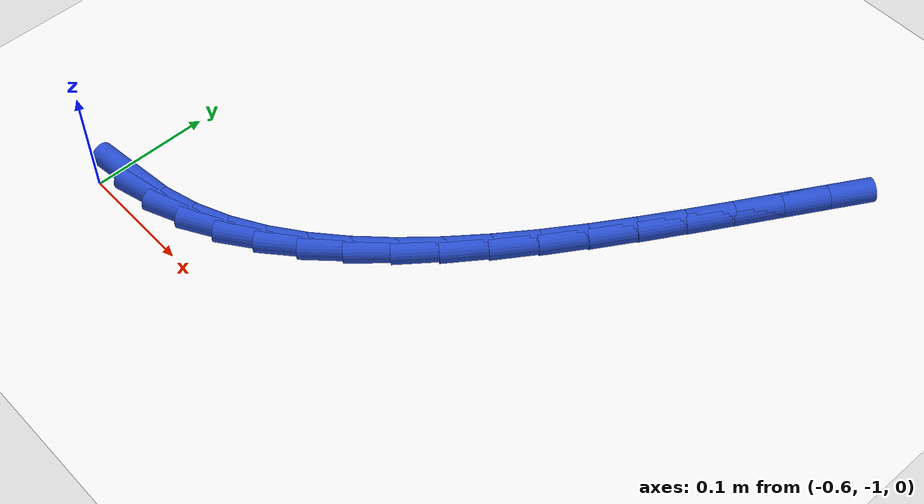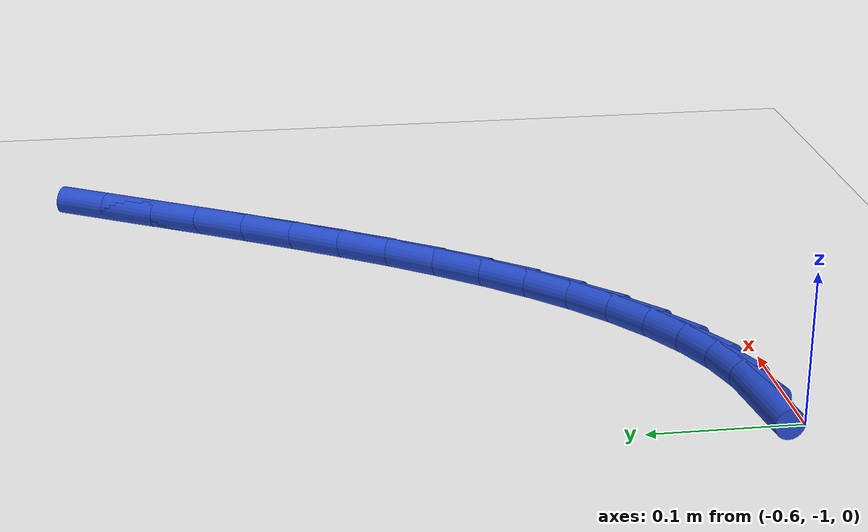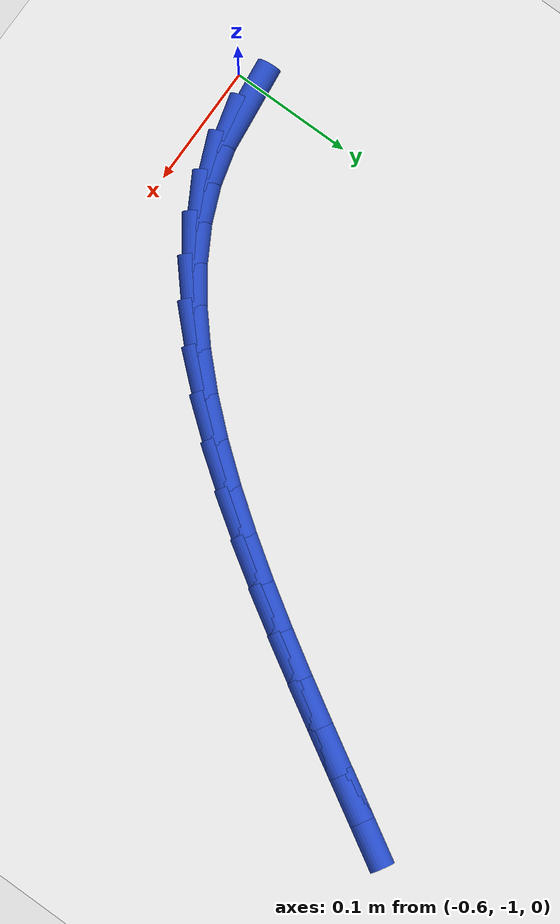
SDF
<sdf version="1.6">
 <world name="default">
  <model name="ground_plane">
   <static>1</static>
   <link name="link">
    <collision name="collision">
     <geometry><plane><normal>0 0 1</normal><size>100 100</size></plane></geometry>
     <surface><friction><ode><mu>100</mu><mu2>50</mu2></ode></friction></surface>
    </collision>
    <visual name="visual">
     <cast_shadows>0</cast_shadows>
     <geometry><plane><normal>0 0 1</normal><size>100 100</size></plane></geometry>
     <material>
      <script><uri>file://media/materials/scripts/gazebo.material</uri><name>Gazebo/WhiteGlow</name></script>
     </material>
    </visual>
   </link>
  </model>
  <model name="line">
   <link name="link_166">
    <pose>-0.5781190349333428 -0.9795975874080077 0.01 0 1.57 0.1142099212478827</pose>
    <collision name="collision">
     <geometry><cylinder><radius>0.01</radius><length>0.08</length></cylinder></geometry>
    </collision>
    <visual name="visual">
     <material>
      <script><name>Gazebo/Blue</name><uri>file://media/materials/scripts/gazebo.material</uri></script>
     </material>
     <geometry><cylinder><radius>0.01</radius><length>0.08</length></cylinder></geometry>
    </visual>
   </link>
   <link name="link_167">
    <pose>-0.5465801723861787 -0.9759797926460713 0.01 0 1.57 0.2614396355879216</pose>
    <collision name="collision">
     <geometry><cylinder><radius>0.01</radius><length>0.08</length></cylinder></geometry>
    </collision>
    <visual name="visual">
     <material>
      <script><name>Gazebo/Blue</name><uri>file://media/materials/scripts/gazebo.material</uri></script>
     </material>
     <geometry><cylinder><radius>0.01</radius><length>0.08</length></cylinder></geometry>
    </visual>
   </link>
   <link name="link_168">
    <pose>-0.5162876436751659 -0.9678746131472767 0.01 0 1.57 0.3979120259220147</pose>
    <collision name="collision">
     <geometry><cylinder><radius>0.01</radius><length>0.08</length></cylinder></geometry>
    </collision>
    <visual name="visual">
     <material>
      <script><name>Gazebo/Blue</name><uri>file://media/materials/scripts/gazebo.material</uri></script>
     </material>
     <geometry><cylinder><radius>0.01</radius><length>0.08</length></cylinder></geometry>
    </visual>
   </link>
   <link name="link_169">
    <pose>-0.48718321905902034 -0.9556410287517573 0.01 0 1.57 0.5194823866372035</pose>
    <collision name="collision">
     <geometry><cylinder><radius>0.01</radius><length>0.08</length></cylinder></geometry>
    </collision>
    <visual name="visual">
     <material>
      <script><name>Gazebo/Blue</name><uri>file://media/materials/scripts/gazebo.material</uri></script>
     </material>
     <geometry><cylinder><radius>0.01</radius><length>0.08</length></cylinder></geometry>
    </visual>
   </link>
   <link name="link_170">
    <pose>-0.4592080897747576 -0.939642759167327 0.01 0 1.57 0.6247054821061292</pose>
    <collision name="collision">
     <geometry><cylinder><radius>0.01</radius><length>0.08</length></cylinder></geometry>
    </collision>
    <visual name="visual">
     <material>
      <script><name>Gazebo/Blue</name><uri>file://media/materials/scripts/gazebo.material</uri></script>
     </material>
     <geometry><cylinder><radius>0.01</radius><length>0.08</length></cylinder></geometry>
    </visual>
   </link>
   <link name="link_171">
    <pose>-0.43230344705939305 -0.920243524101801 0.01 0 1.57 0.714000514725786</pose>
    <collision name="collision">
     <geometry><cylinder><radius>0.01</radius><length>0.08</length></cylinder></geometry>
    </collision>
    <visual name="visual">
     <material>
      <script><name>Gazebo/Blue</name><uri>file://media/materials/scripts/gazebo.material</uri></script>
     </material>
     <geometry><cylinder><radius>0.01</radius><length>0.08</length></cylinder></geometry>
    </visual>
   </link>
   <link name="link_172">
    <pose>-0.40641048214994246 -0.8978070432629935 0.01 0 1.57 0.7887929693143356</pose>
    <collision name="collision">
     <geometry><cylinder><radius>0.01</radius><length>0.08</length></cylinder></geometry>
    </collision>
    <visual name="visual">
     <material>
      <script><name>Gazebo/Blue</name><uri>file://media/materials/scripts/gazebo.material</uri></script>
     </material>
     <geometry><cylinder><radius>0.01</radius><length>0.08</length></cylinder></geometry>
    </visual>
   </link>
   <link name="link_173">
    <pose>-0.3814703862834213 -0.8726970363587198 0.01 0 1.57 0.8508582203675277</pose>
    <collision name="collision">
     <geometry><cylinder><radius>0.01</radius><length>0.08</length></cylinder></geometry>
    </collision>
    <visual name="visual">
     <material>
      <script><name>Gazebo/Blue</name><uri>file://media/materials/scripts/gazebo.material</uri></script>
     </material>
     <geometry><cylinder><radius>0.01</radius><length>0.08</length></cylinder></geometry>
    </visual>
   </link>
   <link name="link_174">
    <pose>-0.357424350696845 -0.8452772230967935 0.01 0 1.57 0.9019370032166966</pose>
    <collision name="collision">
     <geometry><cylinder><radius>0.01</radius><length>0.08</length></cylinder></geometry>
    </collision>
    <visual name="visual">
     <material>
      <script><name>Gazebo/Blue</name><uri>file://media/materials/scripts/gazebo.material</uri></script>
     </material>
     <geometry><cylinder><radius>0.01</radius><length>0.08</length></cylinder></geometry>
    </visual>
   </link>
   <link name="link_175">
    <pose>-0.3342135666272291 -0.8159113231850296 0.01 0 1.57 0.9435548988082255</pose>
    <collision name="collision">
     <geometry><cylinder><radius>0.01</radius><length>0.08</length></cylinder></geometry>
    </collision>
    <visual name="visual">
     <material>
      <script><name>Gazebo/Blue</name><uri>file://media/materials/scripts/gazebo.material</uri></script>
     </material>
     <geometry><cylinder><radius>0.01</radius><length>0.08</length></cylinder></geometry>
    </visual>
   </link>
   <link name="link_176">
    <pose>-0.3117792253115892 -0.7849630563312429 0.01 0 1.57 0.9769603759287976</pose>
    <collision name="collision">
     <geometry><cylinder><radius>0.01</radius><length>0.08</length></cylinder></geometry>
    </collision>
    <visual name="visual">
     <material>
      <script><name>Gazebo/Blue</name><uri>file://media/materials/scripts/gazebo.material</uri></script>
     </material>
     <geometry><cylinder><radius>0.01</radius><length>0.08</length></cylinder></geometry>
    </visual>
   </link>
   <link name="link_177">
    <pose>-0.2900625179869408 -0.7527961422432475 0.01 0 1.57 1.0031196580913084</pose>
    <collision name="collision">
     <geometry><cylinder><radius>0.01</radius><length>0.08</length></cylinder></geometry>
    </collision>
    <visual name="visual">
     <material>
      <script><name>Gazebo/Blue</name><uri>file://media/materials/scripts/gazebo.material</uri></script>
     </material>
     <geometry><cylinder><radius>0.01</radius><length>0.08</length></cylinder></geometry>
    </visual>
   </link>
   <link name="link_178">
    <pose>-0.26900463589029944 -0.7197743006288583 0.01 0 1.57 1.0227322270558479</pose>
    <collision name="collision">
     <geometry><cylinder><radius>0.01</radius><length>0.08</length></cylinder></geometry>
    </collision>
    <visual name="visual">
     <material>
      <script><name>Gazebo/Blue</name><uri>file://media/materials/scripts/gazebo.material</uri></script>
     </material>
     <geometry><cylinder><radius>0.01</radius><length>0.08</length></cylinder></geometry>
    </visual>
   </link>
   <link name="link_179">
    <pose>-0.24854677025868058 -0.6862612511958897 0.01 0 1.57 1.0362478156926043</pose>
    <collision name="collision">
     <geometry><cylinder><radius>0.01</radius><length>0.08</length></cylinder></geometry>
    </collision>
    <visual name="visual">
     <material>
      <script><name>Gazebo/Blue</name><uri>file://media/materials/scripts/gazebo.material</uri></script>
     </material>
     <geometry><cylinder><radius>0.01</radius><length>0.08</length></cylinder></geometry>
    </visual>
   </link>
   <link name="link_180">
    <pose>-0.2286301123290998 -0.6526207136521561 0.01 0 1.57 1.0438748738699615</pose>
    <collision name="collision">
     <geometry><cylinder><radius>0.01</radius><length>0.08</length></cylinder></geometry>
    </collision>
    <visual name="visual">
     <material>
      <script><name>Gazebo/Blue</name><uri>file://media/materials/scripts/gazebo.material</uri></script>
     </material>
     <geometry><cylinder><radius>0.01</radius><length>0.08</length></cylinder></geometry>
    </visual>
   </link>
   <link name="link_181">
    <pose>-0.20919585333857266 -0.6192164077054727 0.01 0 1.57 1.0455744528018494</pose>
    <collision name="collision">
     <geometry><cylinder><radius>0.01</radius><length>0.08</length></cylinder></geometry>
    </collision>
    <visual name="visual">
     <material>
      <script><name>Gazebo/Blue</name><uri>file://media/materials/scripts/gazebo.material</uri></script>
     </material>
     <geometry><cylinder><radius>0.01</radius><length>0.08</length></cylinder></geometry>
    </visual>
   </link>
   <link name="link_182">
    <pose>-0.19018518660951766 -0.5864120458735332 0.01 0 1.57 1.0432192203892403</pose>
    <collision name="collision">
     <geometry><cylinder><radius>0.01</radius><length>0.08</length></cylinder></geometry>
    </collision>
    <visual name="visual">
     <material>
      <script><name>Gazebo/Blue</name><uri>file://media/materials/scripts/gazebo.material</uri></script>
     </material>
     <geometry><cylinder><radius>0.01</radius><length>0.08</length></cylinder></geometry>
    </visual>
   </link>
  </model>
 </world>
</sdf>
